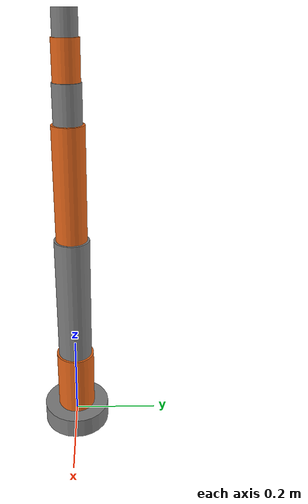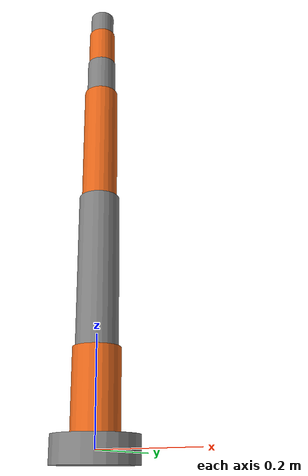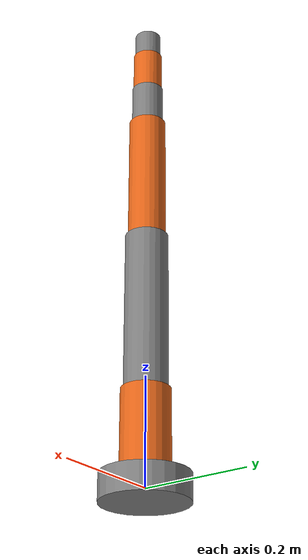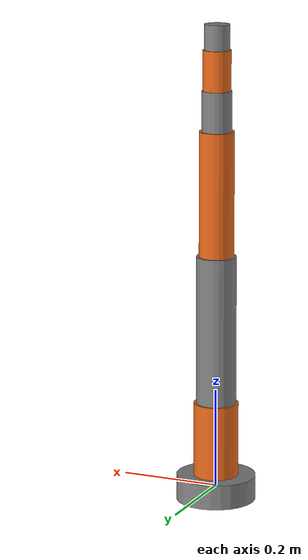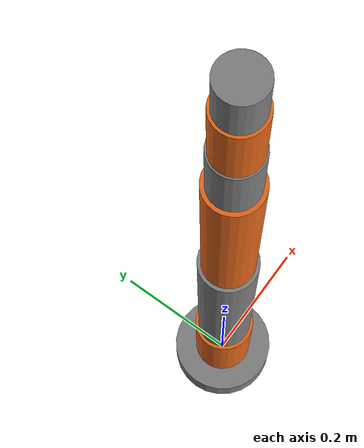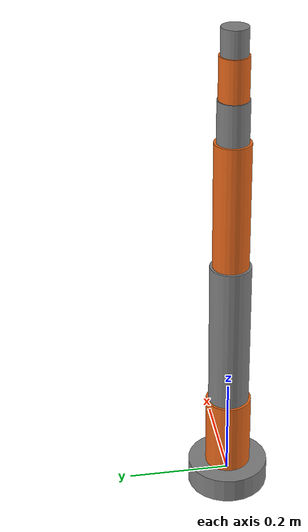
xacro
<?xml version="1.0"?>
<robot xmlns:xacro="http://www.ros.org/wiki/xacro" name="six_axis">
    <xacro:arg name="initial_positions_file" default="initial_positions.yaml" />

    <!-- Import six_axis urdf file -->
    <xacro:include filename="$(find six_axis_description)/urdf/six_axis.urdf.xacro" />

    <!-- Import control_xacro -->
    <xacro:include filename="six_axis.ros2_control.xacro" />

    <xacro:six_axis_ros2_control name="FakeSystem" initial_positions_file="$(arg initial_positions_file)"/>

</robot>

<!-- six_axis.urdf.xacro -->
<robot xmlns:xacro="http://www.ros.org/wiki/xacro" name="six_axis">

  <!-- ========== 可调参数：改这里就能改机械臂尺寸 ========== -->
  <xacro:property name="base_radius"  value="0.08"/>
  <xacro:property name="base_height"  value="0.05"/>
  <xacro:property name="link1_height" value="0.15"/>  <!-- 立柱 -->
  <xacro:property name="link2_length" value="0.30"/>  <!-- 大臂 -->
  <xacro:property name="link3_length" value="0.25"/>  <!-- 小臂 -->
  <xacro:property name="link4_length" value="0.08"/>  <!-- 腕滚转段 -->
  <xacro:property name="link5_length" value="0.08"/>  <!-- 腕俯仰段 -->
  <xacro:property name="link6_length" value="0.05"/>  <!-- 法兰段 -->

  <!-- ========== 颜色 ========== -->
  <material name="grey">
    <color rgba="0.5 0.5 0.5 1.0"/>
  </material>
  <material name="orange">
    <color rgba="0.9 0.4 0.1 1.0"/>
  </material>

  <!-- ========== 连杆宏：link 原点 = 底端关节处，圆柱沿 +z 伸出 ========== -->
  <xacro:macro name="arm_link" params="name radius length mass color">
    <link name="${name}">
      <visual>
        <origin xyz="0 0 ${length/2}"/>
        <geometry>
          <cylinder radius="${radius}" length="${length}"/>
        </geometry>
        <material name="${color}"/>
      </visual>
      <collision>
        <origin xyz="0 0 ${length/2}"/>
        <geometry>
          <cylinder radius="${radius}" length="${length}"/>
        </geometry>
      </collision>
      <!-- 实心圆柱惯量公式，MoveIt 动力学需要 -->
      <inertial>
        <mass value="${mass}"/>
        <inertia
          ixx="${mass * (3*radius**2 + length**2) / 12}"
          ixy="0.0" ixz="0.0"
          iyy="${mass * (3*radius**2 + length**2) / 12}"
          iyz="0.0"
          izz="${mass * radius**2 / 2}"/>
      </inertial>
    </link>
  </xacro:macro>

  <!-- ========== 底座 ========== -->
  <link name="base_link">
    <visual>
      <geometry>
        <cylinder radius="${base_radius}" length="${base_height}"/>
      </geometry>
      <material name="grey"/>
    </visual>
    <collision>
      <geometry>
        <cylinder radius="${base_radius}" length="${base_height}"/>
      </geometry>
    </collision>
    <inertial>
      <mass value="2.0"/>
      <inertia
        ixx="${2.0 * (3*base_radius**2 + base_height**2) / 12}" ixy="0.0" ixz="0.0"
        iyy="${2.0 * (3*base_radius**2 + base_height**2) / 12}" iyz="0.0"
        izz="${2.0 * base_radius**2 / 2}"/>
    </inertial>
  </link>

  <!-- ========== 6 个关节，轴序列 z-y-y-z-y-z（仿 UR 布局） ========== -->

  <!-- 关节1：腰部回转 -->
  <joint name="joint1" type="revolute">
    <parent link="base_link"/>
    <child link="link1"/>
    <origin xyz="0 0 ${base_height/2}"/>
    <axis xyz="0 0 1"/>
    <limit lower="${-pi}" upper="${pi}" effort="100" velocity="1.0"/>
  </joint>
  <xacro:arm_link name="link1" radius="0.045" length="${link1_height}" mass="1.0" color="orange"/>

  <!-- 关节2：肩部俯仰 -->
  <joint name="joint2" type="revolute">
    <parent link="link1"/>
    <child link="link2"/>
    <origin xyz="0 0 ${link1_height}"/>
    <axis xyz="0 1 0"/>
    <limit lower="${-pi/2}" upper="${pi/2}" effort="100" velocity="1.0"/>
  </joint>
  <xacro:arm_link name="link2" radius="0.04" length="${link2_length}" mass="0.9" color="grey"/>

  <!-- 关节3：肘部俯仰 -->
  <joint name="joint3" type="revolute">
    <parent link="link2"/>
    <child link="link3"/>
    <origin xyz="0 0 ${link2_length}"/>
    <axis xyz="0 1 0"/>
    <limit lower="${-2*pi/3}" upper="${2*pi/3}" effort="100" velocity="1.0"/>
  </joint>
  <xacro:arm_link name="link3" radius="0.035" length="${link3_length}" mass="0.6" color="orange"/>

  <!-- 关节4：腕部滚转（绕小臂轴线自转） -->
  <joint name="joint4" type="revolute">
    <parent link="link3"/>
    <child link="link4"/>
    <origin xyz="0 0 ${link3_length}"/>
    <axis xyz="0 0 1"/>
    <limit lower="${-pi}" upper="${pi}" effort="50" velocity="2.0"/>
  </joint>
  <xacro:arm_link name="link4" radius="0.03" length="${link4_length}" mass="0.25" color="grey"/>

  <!-- 关节5：腕部俯仰 -->
  <joint name="joint5" type="revolute">
    <parent link="link4"/>
    <child link="link5"/>
    <origin xyz="0 0 ${link4_length}"/>
    <axis xyz="0 1 0"/>
    <limit lower="${-pi/2}" upper="${pi/2}" effort="50" velocity="2.0"/>
  </joint>
  <xacro:arm_link name="link5" radius="0.028" length="${link5_length}" mass="0.2" color="orange"/>

  <!-- 关节6：法兰滚转（工具自转定向） -->
  <joint name="joint6" type="revolute">
    <parent link="link5"/>
    <child link="link6"/>
    <origin xyz="0 0 ${link5_length}"/>
    <axis xyz="0 0 1"/>
    <limit lower="${-pi}" upper="${pi}" effort="30" velocity="2.0"/>
  </joint>
  <xacro:arm_link name="link6" radius="0.025" length="${link6_length}" mass="0.15" color="grey"/>

  <!-- ========== 末端法兰（固定关节，TCP 工具点） ========== -->
  <joint name="joint_tool" type="fixed">
    <parent link="link6"/>
    <child link="tool0"/>
    <origin xyz="0 0 ${link6_length}"/>
  </joint>
  <link name="tool0"/>

</robot>
